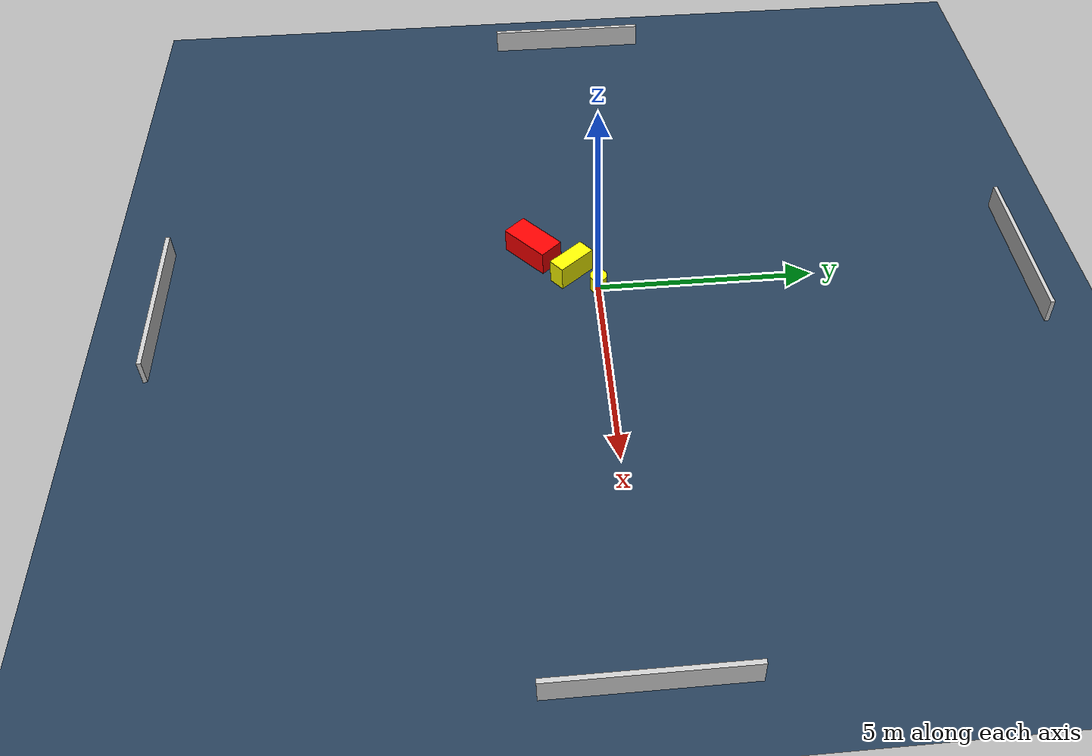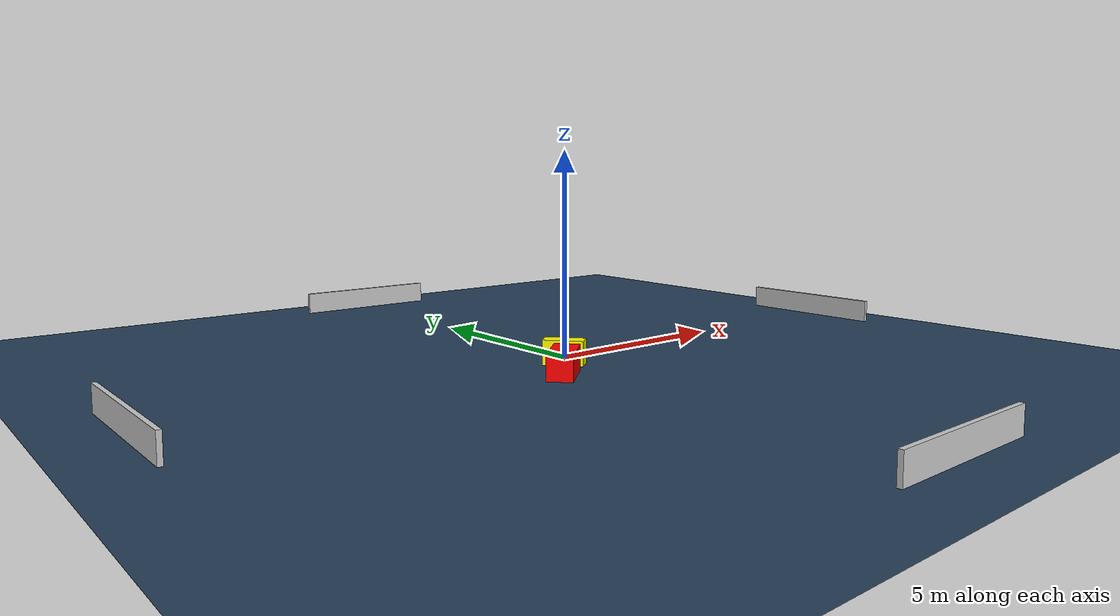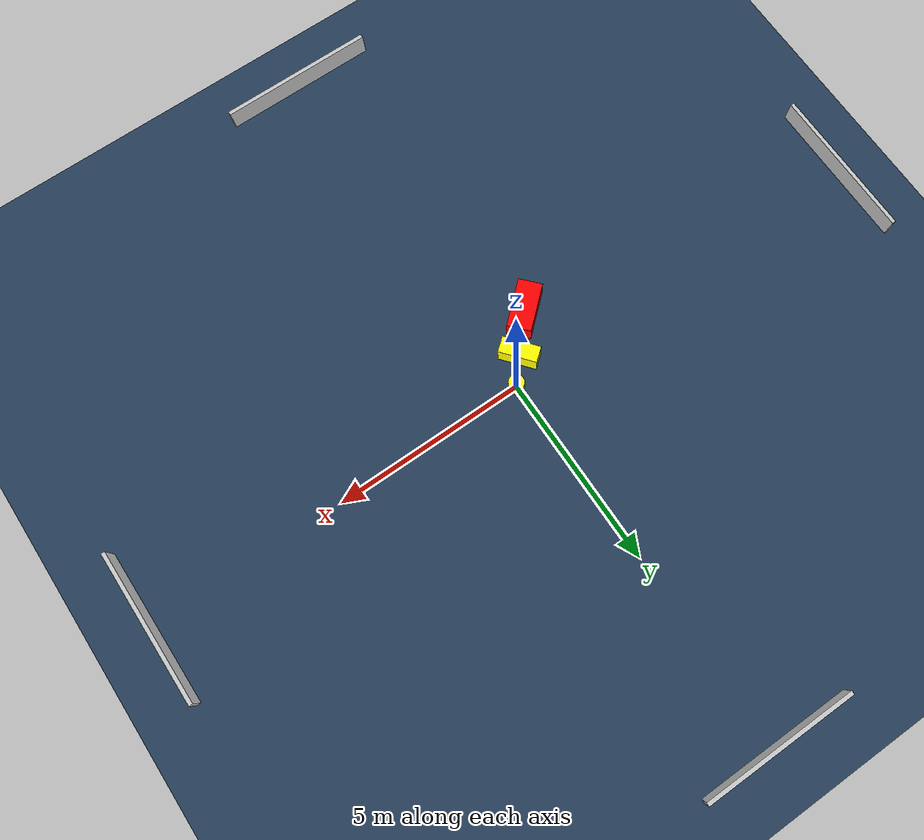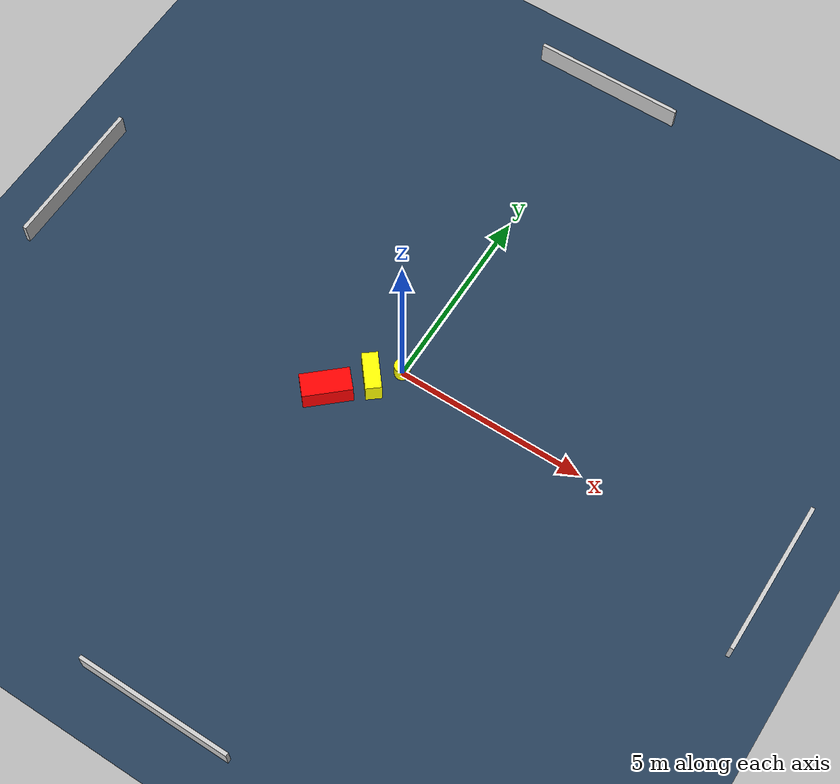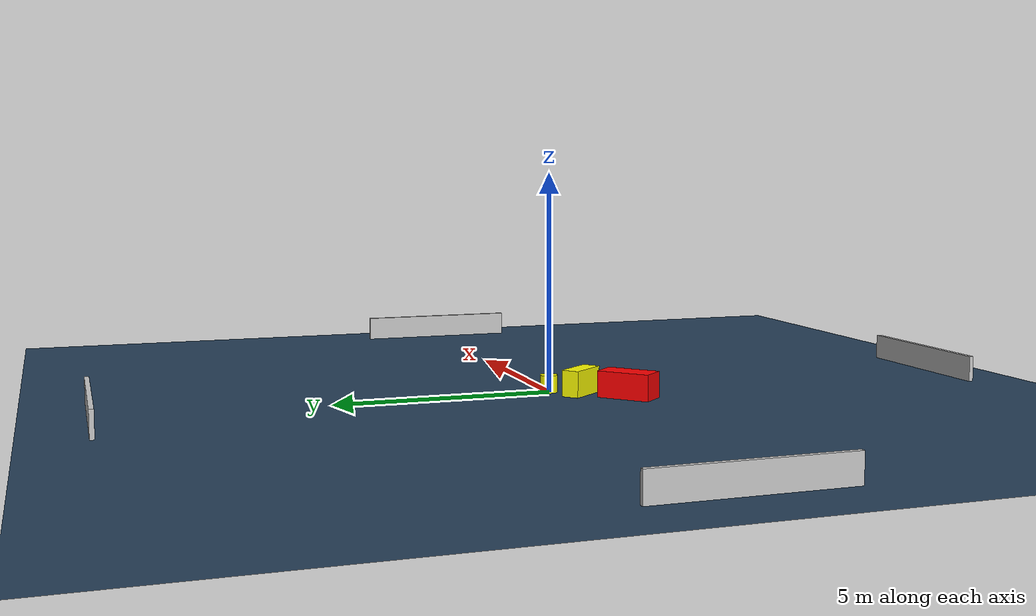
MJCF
<?xml version="1.0" ?>
<mujoco model="generated_environment">
  <option timestep="0.01" integrator="RK4" cone="elliptic"/>
  <default>
    <geom density="1"/>
  </default>
  <asset>
    <texture builtin="gradient" height="3072" name="skybox" rgb1="0.3 0.5 0.7" rgb2="0 0 0" type="skybox" width="512"/>
    <texture builtin="checker" height="300" name="groundplane" rgb1="0.2 0.3 0.4" rgb2="0.1 0.2 0.3" type="2d" width="300"/>
    <material name="groundplane" reflectance="0.2" texrepeat="5 5" texture="groundplane"/>
  </asset>
  <worldbody>
    <light dir="0 0 -1" directional="true" pos="0 0 1.5"/>
    <geom condim="3" friction="0.5 0.005 0.001" material="groundplane" name="floor" pos="0 0 0" size="0 0 0.05" type="plane"/>
    <body name="walls">
      <geom name="wall_1" condim="4" pos="-10.0 0.0 0.3" rgba="0.800000011920929 0.800000011920929 0.800000011920929 1.0" size="0.05 2.0 0.3" type="box"/>
      <geom name="wall_2" condim="4" pos="10.0 0.0 0.3" rgba="0.800000011920929 0.800000011920929 0.800000011920929 1.0" size="0.05 2.0 0.3" type="box"/>
      <geom name="wall_3" condim="4" pos="0.0 -10.0 0.3" rgba="0.800000011920929 0.800000011920929 0.800000011920929 1.0" size="2.0 0.05 0.3" type="box"/>
      <geom name="wall_4" condim="4" pos="0.0 10.0 0.3" rgba="0.800000011920929 0.800000011920929 0.800000011920929 1.0" size="2.0 0.05 0.3" type="box"/>
    </body>
    <body name="robot">
      <joint name="joint_x" type="slide" pos="0 0 0" axis="1 0 0"/>
      <joint name="joint_y" type="slide" pos="0 0 0" axis="0 1 0"/>
      <geom name="robot" type="cylinder" pos="0.0 0.0 0.2" size="0.2 0.2 0.0" mass="5.0" friction="1.0 0.005 0.0001" condim="4" rgba="1.0 1.0 0.0 1.0"/>
    </body>
    <body name="obstacle_1_movable">
      <geom name="obstacle_1_movable" condim="4" pos="-0.4959835760156468 -0.5872448699753152 0.3" euler="0 0 309.19709444359853" friction="0.0 0.005 0.001" rgba="1.0 1.0 0.0 1.0" size="0.4845458051367693 0.2044288349501911 0.3" type="box" mass="0.1"/>
      <joint type="free"/>
    </body>
    <body name="obstacle_2_static">
      <geom name="obstacle_2_static" condim="4" pos="-1.2419117607317485 -1.4414777250746769 0.3" euler="0 0 221.97175510329734" friction="0.0 0.005 0.001" rgba="1.0 0.0 0.0 1.0" size="0.6217188564473952 0.3059880655712516 0.3" type="box"/>
    </body>
  </worldbody>
  <actuator>
    <motor name="actuator_x" joint="joint_x" gear="1" ctrlrange="-1 1"/>
    <motor name="actuator_y" joint="joint_y" gear="1" ctrlrange="-1 1"/>
  </actuator>
</mujoco>
